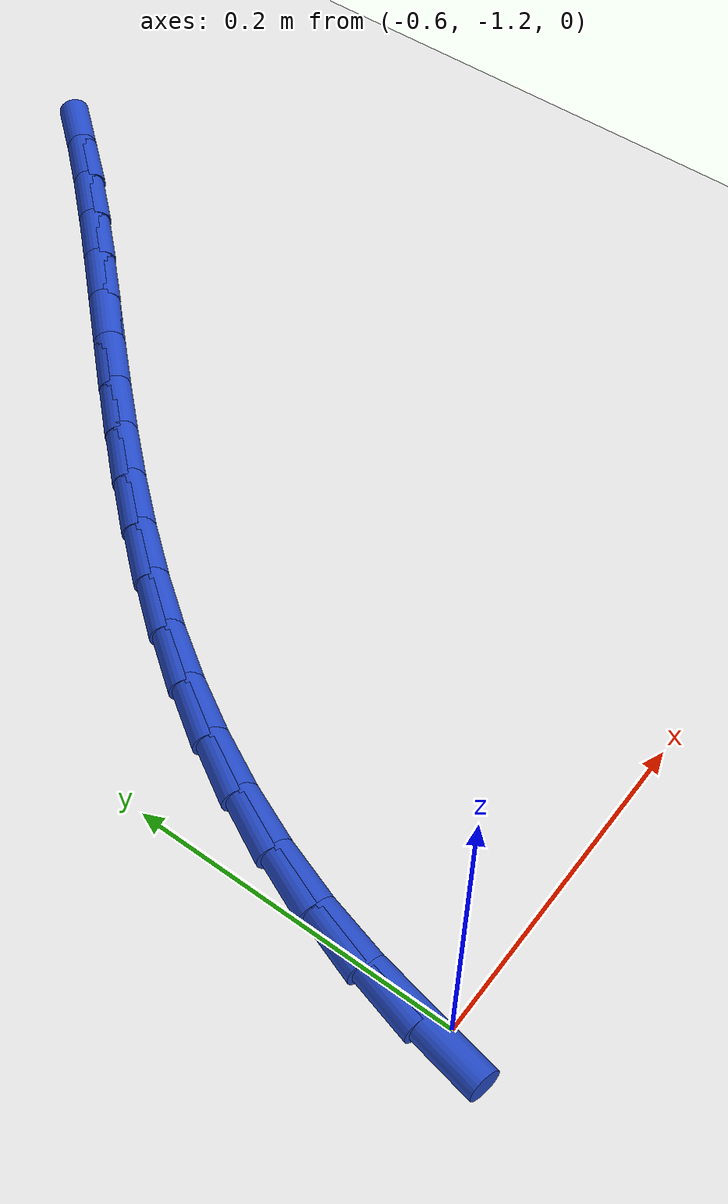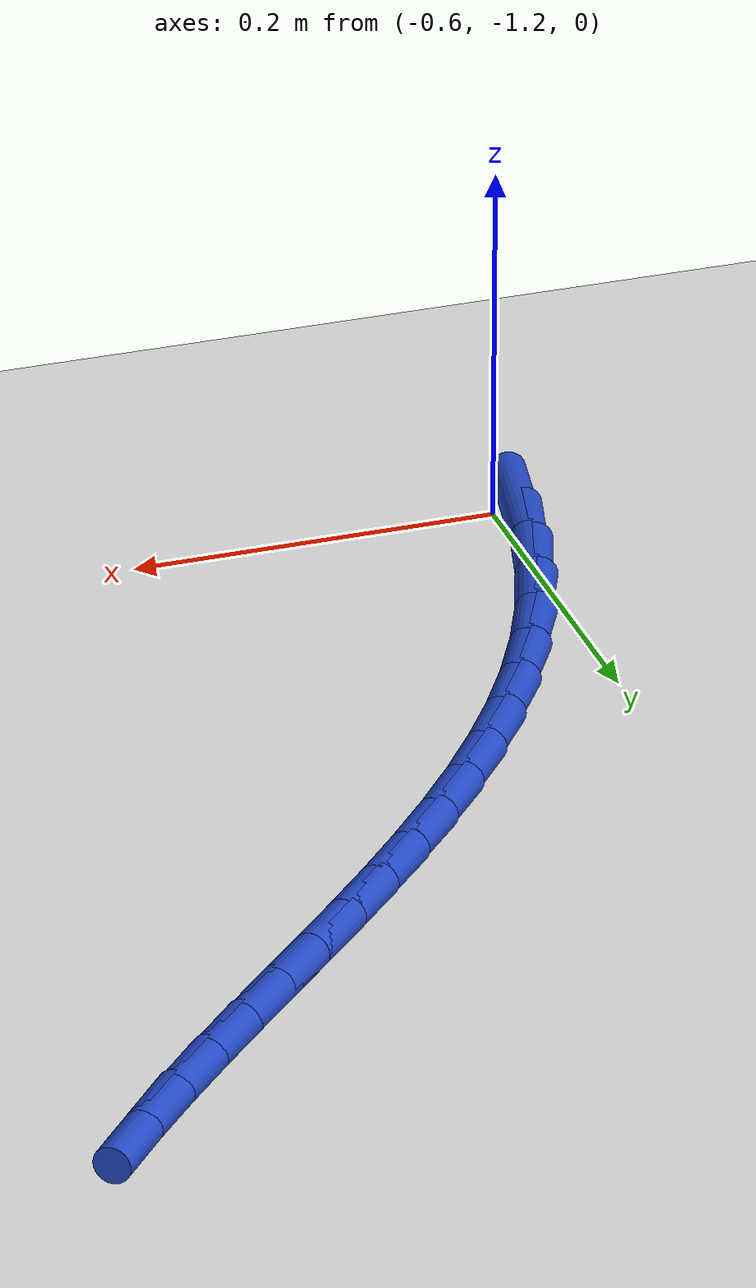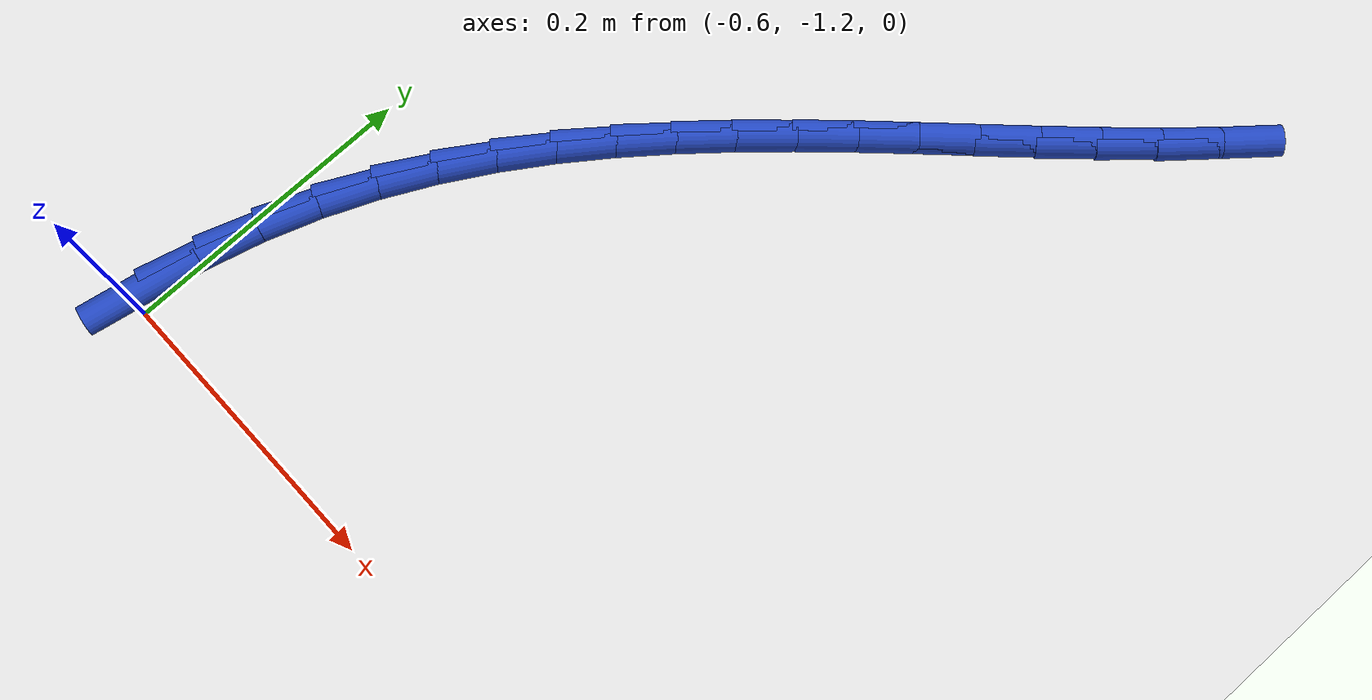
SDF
<sdf version="1.6">
 <world name="default">
  <model name="ground_plane">
   <static>1</static>
   <link name="link">
    <collision name="collision">
     <geometry><plane><normal>0 0 1</normal><size>100 100</size></plane></geometry>
     <surface><friction><ode><mu>100</mu><mu2>50</mu2></ode></friction></surface>
    </collision>
    <visual name="visual">
     <cast_shadows>0</cast_shadows>
     <geometry><plane><normal>0 0 1</normal><size>100 100</size></plane></geometry>
     <material>
      <script><uri>file://media/materials/scripts/gazebo.material</uri><name>Gazebo/WhiteGlow</name></script>
     </material>
    </visual>
   </link>
  </model>
  <model name="line">
   <link name="link_184">
    <pose>-0.6105140515533117 -1.1913100762840019 0.01 0 1.57 1.3794772671592748</pose>
    <collision name="collision">
     <geometry><cylinder><radius>0.01</radius><length>0.08</length></cylinder></geometry>
    </collision>
    <visual name="visual">
     <material>
      <script><name>Gazebo/Blue</name><uri>file://media/materials/scripts/gazebo.material</uri></script>
     </material>
     <geometry><cylinder><radius>0.01</radius><length>0.08</length></cylinder></geometry>
    </visual>
   </link>
   <link name="link_185">
    <pose>-0.6026398692888747 -1.1506561332317304 0.01 0 1.57 1.3084766085144233</pose>
    <collision name="collision">
     <geometry><cylinder><radius>0.01</radius><length>0.08</length></cylinder></geometry>
    </collision>
    <visual name="visual">
     <material>
      <script><name>Gazebo/Blue</name><uri>file://media/materials/scripts/gazebo.material</uri></script>
     </material>
     <geometry><cylinder><radius>0.01</radius><length>0.08</length></cylinder></geometry>
    </visual>
   </link>
   <link name="link_186">
    <pose>-0.5921819855315162 -1.1117078549262056 0.01 0 1.57 1.2352253411934564</pose>
    <collision name="collision">
     <geometry><cylinder><radius>0.01</radius><length>0.08</length></cylinder></geometry>
    </collision>
    <visual name="visual">
     <material>
      <script><name>Gazebo/Blue</name><uri>file://media/materials/scripts/gazebo.material</uri></script>
     </material>
     <geometry><cylinder><radius>0.01</radius><length>0.08</length></cylinder></geometry>
    </visual>
   </link>
   <link name="link_187">
    <pose>-0.5792136495839686 -1.0745238803426491 0.01 0 1.57 1.1653277008022598</pose>
    <collision name="collision">
     <geometry><cylinder><radius>0.01</radius><length>0.08</length></cylinder></geometry>
    </collision>
    <visual name="visual">
     <material>
      <script><name>Gazebo/Blue</name><uri>file://media/materials/scripts/gazebo.material</uri></script>
     </material>
     <geometry><cylinder><radius>0.01</radius><length>0.08</length></cylinder></geometry>
    </visual>
   </link>
   <link name="link_188">
    <pose>-0.5639463793104511 -1.0389569281491522 0.01 0 1.57 1.0999931565699543</pose>
    <collision name="collision">
     <geometry><cylinder><radius>0.01</radius><length>0.08</length></cylinder></geometry>
    </collision>
    <visual name="visual">
     <material>
      <script><name>Gazebo/Blue</name><uri>file://media/materials/scripts/gazebo.material</uri></script>
     </material>
     <geometry><cylinder><radius>0.01</radius><length>0.08</length></cylinder></geometry>
    </visual>
   </link>
   <link name="link_189">
    <pose>-0.546591692575184 -1.0048597170138063 0.01 0 1.57 1.0401764475347903</pose>
    <collision name="collision">
     <geometry><cylinder><radius>0.01</radius><length>0.08</length></cylinder></geometry>
    </collision>
    <visual name="visual">
     <material>
      <script><name>Gazebo/Blue</name><uri>file://media/materials/scripts/gazebo.material</uri></script>
     </material>
     <geometry><cylinder><radius>0.01</radius><length>0.08</length></cylinder></geometry>
    </visual>
   </link>
   <link name="link_190">
    <pose>-0.527361107242387 -0.9720849656047033 0.01 0 1.57 0.9865586436636818</pose>
    <collision name="collision">
     <geometry><cylinder><radius>0.01</radius><length>0.08</length></cylinder></geometry>
    </collision>
    <visual name="visual">
     <material>
      <script><name>Gazebo/Blue</name><uri>file://media/materials/scripts/gazebo.material</uri></script>
     </material>
     <geometry><cylinder><radius>0.01</radius><length>0.08</length></cylinder></geometry>
    </visual>
   </link>
   <link name="link_191">
    <pose>-0.5064661411762811 -0.9404853925899365 0.01 0 1.57 0.9395679328921568</pose>
    <collision name="collision">
     <geometry><cylinder><radius>0.01</radius><length>0.08</length></cylinder></geometry>
    </collision>
    <visual name="visual">
     <material>
      <script><name>Gazebo/Blue</name><uri>file://media/materials/scripts/gazebo.material</uri></script>
     </material>
     <geometry><cylinder><radius>0.01</radius><length>0.08</length></cylinder></geometry>
    </visual>
   </link>
   <link name="link_192">
    <pose>-0.4841183122410856 -0.9099137166375967 0.01 0 1.57 0.8994257620599342</pose>
    <collision name="collision">
     <geometry><cylinder><radius>0.01</radius><length>0.08</length></cylinder></geometry>
    </collision>
    <visual name="visual">
     <material>
      <script><name>Gazebo/Blue</name><uri>file://media/materials/scripts/gazebo.material</uri></script>
     </material>
     <geometry><cylinder><radius>0.01</radius><length>0.08</length></cylinder></geometry>
    </visual>
   </link>
   <link name="link_193">
    <pose>-0.4605291383010207 -0.8802226564157761 0.01 0 1.57 0.8662033502128124</pose>
    <collision name="collision">
     <geometry><cylinder><radius>0.01</radius><length>0.08</length></cylinder></geometry>
    </collision>
    <visual name="visual">
     <material>
      <script><name>Gazebo/Blue</name><uri>file://media/materials/scripts/gazebo.material</uri></script>
     </material>
     <geometry><cylinder><radius>0.01</radius><length>0.08</length></cylinder></geometry>
    </visual>
   </link>
   <link name="link_194">
    <pose>-0.43591013722030636 -0.8512649305925666 0.01 0 1.57 0.8398771487250535</pose>
    <collision name="collision">
     <geometry><cylinder><radius>0.01</radius><length>0.08</length></cylinder></geometry>
    </collision>
    <visual name="visual">
     <material>
      <script><name>Gazebo/Blue</name><uri>file://media/materials/scripts/gazebo.material</uri></script>
     </material>
     <geometry><cylinder><radius>0.01</radius><length>0.08</length></cylinder></geometry>
    </visual>
   </link>
   <link name="link_195">
    <pose>-0.4104728268631622 -0.8228932578360596 0.01 0 1.57 0.8203765576045139</pose>
    <collision name="collision">
     <geometry><cylinder><radius>0.01</radius><length>0.08</length></cylinder></geometry>
    </collision>
    <visual name="visual">
     <material>
      <script><name>Gazebo/Blue</name><uri>file://media/materials/scripts/gazebo.material</uri></script>
     </material>
     <geometry><cylinder><radius>0.01</radius><length>0.08</length></cylinder></geometry>
    </visual>
   </link>
   <link name="link_196">
    <pose>-0.3844287250938094 -0.7949603568143484 0.01 0 1.57 0.8076211654190049</pose>
    <collision name="collision">
     <geometry><cylinder><radius>0.01</radius><length>0.08</length></cylinder></geometry>
    </collision>
    <visual name="visual">
     <material>
      <script><name>Gazebo/Blue</name><uri>file://media/materials/scripts/gazebo.material</uri></script>
     </material>
     <geometry><cylinder><radius>0.01</radius><length>0.08</length></cylinder></geometry>
    </visual>
   </link>
   <link name="link_197">
    <pose>-0.3579893497764673 -0.7673189461955241 0.01 0 1.57 0.8015472615333055</pose>
    <collision name="collision">
     <geometry><cylinder><radius>0.01</radius><length>0.08</length></cylinder></geometry>
    </collision>
    <visual name="visual">
     <material>
      <script><name>Gazebo/Blue</name><uri>file://media/materials/scripts/gazebo.material</uri></script>
     </material>
     <geometry><cylinder><radius>0.01</radius><length>0.08</length></cylinder></geometry>
    </visual>
   </link>
   <link name="link_198">
    <pose>-0.3313662187753561 -0.7398217446476788 0.01 0 1.57 0.8021244754307799</pose>
    <collision name="collision">
     <geometry><cylinder><radius>0.01</radius><length>0.08</length></cylinder></geometry>
    </collision>
    <visual name="visual">
     <material>
      <script><name>Gazebo/Blue</name><uri>file://media/materials/scripts/gazebo.material</uri></script>
     </material>
     <geometry><cylinder><radius>0.01</radius><length>0.08</length></cylinder></geometry>
    </visual>
   </link>
   <link name="link_199">
    <pose>-0.304770849954695 -0.7123214708389038 0.01 0 1.57 0.809363530543259</pose>
    <collision name="collision">
     <geometry><cylinder><radius>0.01</radius><length>0.08</length></cylinder></geometry>
    </collision>
    <visual name="visual">
     <material>
      <script><name>Gazebo/Blue</name><uri>file://media/materials/scripts/gazebo.material</uri></script>
     </material>
     <geometry><cylinder><radius>0.01</radius><length>0.08</length></cylinder></geometry>
    </visual>
   </link>
   <link name="link_200">
    <pose>-0.2784147611787055 -0.684670843437292 0.01 0 1.57 0.8233156666828643</pose>
    <collision name="collision">
     <geometry><cylinder><radius>0.01</radius><length>0.08</length></cylinder></geometry>
    </collision>
    <visual name="visual">
     <material>
      <script><name>Gazebo/Blue</name><uri>file://media/materials/scripts/gazebo.material</uri></script>
     </material>
     <geometry><cylinder><radius>0.01</radius><length>0.08</length></cylinder></geometry>
    </visual>
   </link>
   <link name="link_201">
    <pose>-0.252509470311607 -0.6567225811109353 0.01 0 1.57 0.8440636062844136</pose>
    <collision name="collision">
     <geometry><cylinder><radius>0.01</radius><length>0.08</length></cylinder></geometry>
    </collision>
    <visual name="visual">
     <material>
      <script><name>Gazebo/Blue</name><uri>file://media/materials/scripts/gazebo.material</uri></script>
     </material>
     <geometry><cylinder><radius>0.01</radius><length>0.08</length></cylinder></geometry>
    </visual>
   </link>
   <link name="link_202">
    <pose>-0.22726649521761938 -0.6283294025279251 0.01 0 1.57 0.8717032744103093</pose>
    <collision name="collision">
     <geometry><cylinder><radius>0.01</radius><length>0.08</length></cylinder></geometry>
    </collision>
    <visual name="visual">
     <material>
      <script><name>Gazebo/Blue</name><uri>file://media/materials/scripts/gazebo.material</uri></script>
     </material>
     <geometry><cylinder><radius>0.01</radius><length>0.08</length></cylinder></geometry>
    </visual>
   </link>
  </model>
 </world>
</sdf>
